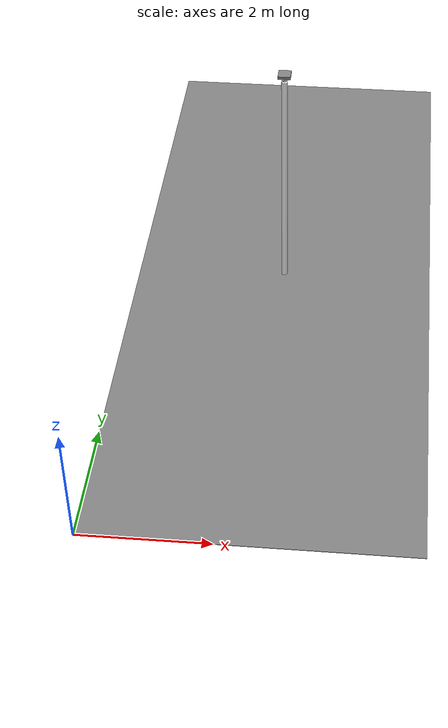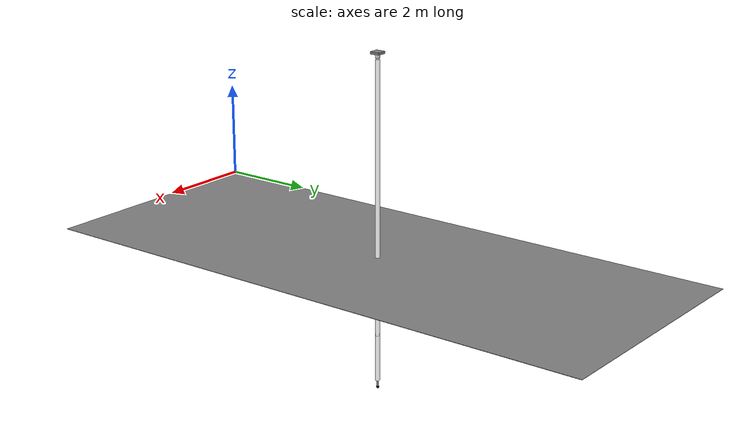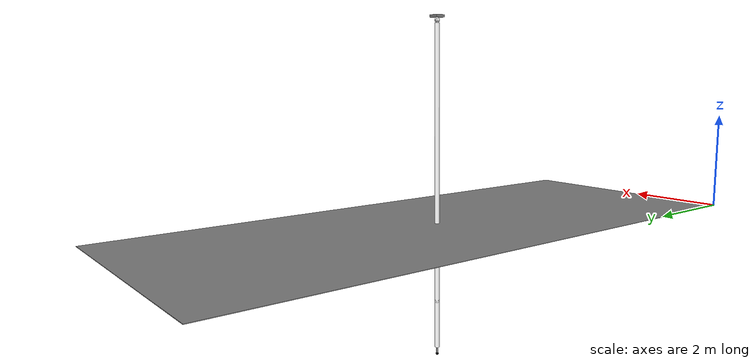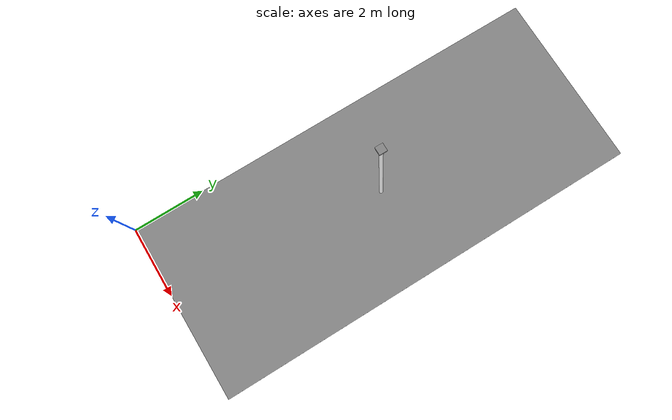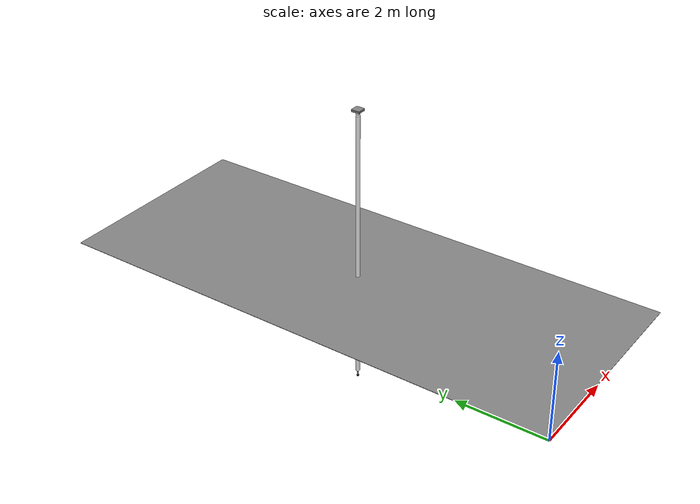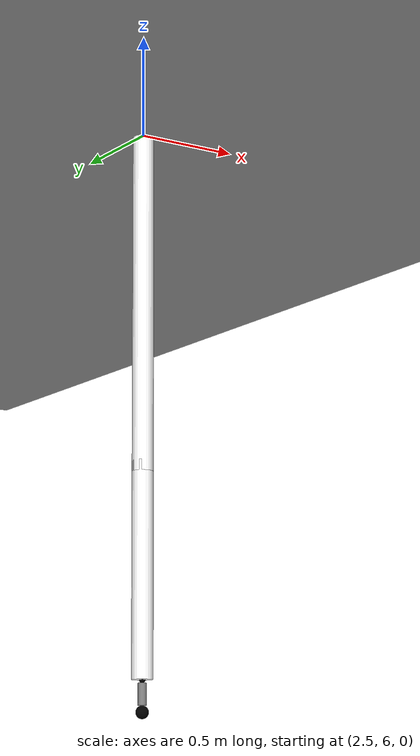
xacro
<?xml version="1.0" ?>

<robot name="giraffe_robot"  xmlns:xacro="http://www.ros.org/wiki/xacro">

    <!-- parameters -->
    <xacro:property name="ceiling_height" value="4.0"/>
    <xacro:property name="box_heigth" value="0.05"/>
    <xacro:property name="link_radius" value="0.05"/>
    <xacro:property name="prismatic_length" value="5.5"/>  <!-- prismatic range -->
    <xacro:property name="wrist_length" value="1"/>
    <xacro:property name="wrist2_radius" value="0.015"/>

    <!-- materials -->
    <material name="Blue">
        <color rgba="0 0 0.8 1"/>
    </material>

    <material name="Grey">
        <color rgba="0.5 0.5 0.5 1"/>
    </material>

    <material name="White">
        <color rgba="1 1 1 1"/>
    </material>

    <material name="Black">
        <color rgba="0 0 0 1"/>
    </material>

    <!-- params for inertia -->
    <!-- chosen material for the robot: aluminum. ABS plastic for microphone -->
    <xacro:property name="density_aluminum" value="2700.0"/>  <!-- density to compute mass (kg/m^3)-->
    <xacro:property name="density_plastic" value="1030.0"/>  <!-- density to compute mass (kg/m^3)-->
    <!-- masses of robot elements: density*volume -->
    <xacro:property name="base_joint_mass" value="${density_aluminum * (4/3)*pi*pow(link_radius, 3)}"/>    <!-- unique sphere volume for joint 1 and 2 -->
    <xacro:property name="prismatic_mass" value="${density_aluminum * pi*pow(link_radius, 2)*prismatic_length}"/>     <!-- sphere volume -->
    <xacro:property name="wrist1_joint_mass" value="${density_aluminum* pi*pow(link_radius, 2)*wrist_length}"/>  <!-- cylinder volume -->
    <xacro:property name="wrist1_mass" value="${density_aluminum* pi*pow(link_radius, 2)*wrist_length}"/>        <!-- cylinder volume -->
    <xacro:property name="wrist2_joint_mass" value="${density_aluminum* (4/3)*pi*pow(wrist2_radius, 3)}"/>  <!-- sphere volume -->
    <xacro:property name="mic_mass" value="${density_plastic* ((4/3)*pi*pow(0.03, 3) + pi*pow(0.02, 2)*0.1)}"/>    <!-- cylinder+sphere volume -->

    <link name="world"/>

   <!--floor 5x12 -->
    <link name="floor">
    <visual>
        <geometry>
        <box size="5 12 0.01"/> <!-- thin plane -->
        </geometry>
        <origin xyz="2.5 6 -0.005" rpy="0 0 0"/>    <!-- in -z to perfectly center it -->
        <material name="Grey"/>
    </visual>
    </link >

    <joint name="world_floor" type="fixed">
        <parent link="world"/>
        <child link="floor"/>
        <origin xyz="0 0 0" rpy="0 0 0"/>
    </joint>

    <!-- base link (on the ceiling) -->
    <link name="base_link">
        <visual>
            <geometry>
                <box size="0.2 0.2 ${box_heigth}"/>
            </geometry>
            <material name="Grey"/>
        </visual>
    </link>

    <!-- world reference set at the center of the ceiling-->
    <joint name="world_base" type="fixed">
        <parent link="world"/>
        <child link="base_link"/>
        <origin xyz="2.5 6.0 ${ceiling_height}" rpy="0 0 0"/>
    </joint>

    <!-- yaw link (z axis) and joint -->
    <link name="yaw_link">
        <visual>
            <geometry>
                <sphere radius="${link_radius}"/>
            </geometry>
            <material name="White"/>
        </visual>

        <inertial>
            <mass value="${base_joint_mass/2}"/>
            <origin xyz="0.0 0.0 0.0" rpy="0 0 0"/> <!-- position in the center -->
            <inertia ixx="${(2.0/5.0) * (base_joint_mass/2) * pow(link_radius, 2)}"
            ixy="0.0"
            ixz="0.0"
            iyy="${(2.0/5.0) * (base_joint_mass/2) * pow(link_radius, 2)}"
            iyz="0.0"
            izz="${(2.0/5.0) * (base_joint_mass/2) * pow(link_radius, 2)}"/>   <!-- inertia formula for full spheres -->
        </inertial>
    </link>

    <joint name="yaw_joint" type="revolute">
        <parent link="base_link"/>
        <child link="yaw_link"/>
        <origin xyz="0.0 0.0 -${link_radius+box_heigth/2}" rpy="0 0 0"/>
        <axis xyz="0 0 1"/>
        <limit lower="-${pi}" upper="${pi}" effort="10" velocity="1"/>
    </joint>

    <!-- pitch link (y axis) and joint -->
    <link name="pitch_link">
        <visual>
            <geometry>
                <sphere radius="${link_radius}"/>
            </geometry>
            <origin xyz="0 0 0" rpy="0 ${pi/2} 0"/>
            <material name="White"/>
        </visual>

        <inertial>
            <mass value="${base_joint_mass/2}"/>
            <origin xyz="0.0 0.0 0.0" rpy="0 ${pi/2} 0"/> <!-- position in the center -->
            <inertia ixx="${(2.0/5.0) * (base_joint_mass/2) * pow(link_radius, 2)}"
            ixy="0.0"
            ixz="0.0"
            iyy="${(2.0/5.0) * (base_joint_mass/2) * pow(link_radius, 2)}"
            iyz="0.0"
            izz="${(2.0/5.0) * (base_joint_mass/2) * pow(link_radius, 2)}"/>   <!-- inertia formula for spheres -->
        </inertial>
    </link>

    <joint name="pitch_joint" type="revolute">
        <parent link="yaw_link"/>
        <child link="pitch_link"/>
        <origin xyz="0 0 0" rpy="0 0 0"/>
        <axis xyz="0 1 0"/>
        <limit lower="-${pi/2}" upper="${pi/2}" effort="10" velocity="1"/>
    </joint>

    <!-- prismatic link and joint -->
    <link name="prismatic_link">
        <visual>
            <geometry>
                <cylinder length="${prismatic_length}" radius="${link_radius}"/>
            </geometry>
            <origin xyz="0 0 -${link_radius}" rpy="0 0 0"/>
            <material name="White"/>
        </visual>

        <inertial>
            <mass value="${prismatic_mass}"/>
            <origin xyz="0.0 0.0 -${prismatic_length/2}" rpy="0 0 0"/> <!-- position in the center -->
            <inertia ixx="${(1.0/12.0) * prismatic_mass * (3*pow(link_radius,2) + pow(prismatic_length, 2))}"
            ixy="0.0"
            ixz="0.0"
            iyy="${(1.0/12.0) * prismatic_mass * (3*pow(link_radius,2) + pow(prismatic_length, 2))}"
            iyz="0.0"
            izz="${(1.0/2.0) * prismatic_mass * pow(link_radius, 2)}"/>   <!-- inertia formula for cylinders (cylinder axis along z) -->
        </inertial>                                                       <!-- izz=1/2mr^2 , ixx=iyy=1/12m(3r^2+L^2)-->
    </link>

    <joint name="prismatic_joint" type="prismatic">
        <parent link="pitch_link"/>
        <child link="prismatic_link"/>
        <origin xyz="0 0 -${prismatic_length/2}" rpy="0 0 0"/> <!--xyz="0 0 -${prismatic_length/2}-->
        <axis xyz="0 0 1"/>
        <limit lower="0.0" upper="${prismatic_length}" effort="100" velocity="0.5"/>
    </joint>

    <!-- wrist1 link and joint -->
    <link name="wrist1_link">
        <visual>
            <geometry>
                <cylinder length="${wrist_length}" radius="${link_radius}"/>
            </geometry>
            <origin xyz="0 0 -${wrist_length/2}" rpy="0 0 0"/>
            <material name="White"/>
        </visual>

        <inertial>
            <mass value="${wrist1_mass}"/>
            <origin xyz="0.0 0.0 -${wrist_length/2}" rpy="0 0 0"/> <!-- position in the center -->
            <inertia ixx="${(1.0/12.0) * wrist1_mass * (3*pow(link_radius,2) + pow(wrist_length, 2))}"
            ixy="0.0"
            ixz="0.0"
            iyy="${(1.0/12.0) * wrist1_mass * (3*pow(link_radius,2) + pow(wrist_length, 2))}"
            iyz="0.0"
            izz="${(1.0/2.0) * wrist1_mass * pow(link_radius, 2)}"/>   <!-- inertia formula for cylinders (cylinder axis along z) -->
        </inertial>
    </link>

    <joint name="wrist1" type="revolute">
        <parent link="prismatic_link"/>
        <child link="wrist1_link"/>
        <origin xyz="0 0 -${prismatic_length/2}" rpy="0 0 0"/>
        <axis xyz="0 1 0"/>
        <limit lower="-${pi/2}" upper="${pi/2}" effort="5" velocity="1"/>
    </joint>

    <!-- wrist2 link and joint -->
    <link name="wrist2_link">
        <visual>
            <geometry>
                <sphere radius="${wrist2_radius}"/>
            </geometry>
            <material name="Black"/>
        </visual>

        <inertial>
            <mass value="${wrist2_joint_mass}"/>
            <origin xyz="0.0 0.0 -${wrist2_radius/2}" rpy="0 0 0"/> <!-- position in the center -->
            <inertia ixx="${(2.0/5.0) * wrist2_joint_mass * pow(wrist2_radius, 2)}"
            ixy="0.0"
            ixz="0.0"
            iyy="${(2.0/5.0) * wrist2_joint_mass * pow(wrist2_radius, 2)}"
            iyz="0.0"
            izz="${(2.0/5.0) * wrist2_joint_mass * pow(wrist2_radius, 2)}"/>   <!-- inertia formula for spheres -->
        </inertial>
    </link>

    <joint name="wrist2" type="revolute">
        <parent link="wrist1_link"/>
        <child link="wrist2_link"/>
        <origin xyz="0 0 -${wrist_length}" rpy="0 0 0"/>
        <axis xyz="0 1 0"/>
        <limit lower="-${pi/2}" upper="${pi/2}" effort="5" velocity="1"/>
    </joint>

    <!-- microphone (end effector) -->
     <link name="microphone">
        <visual>
            <geometry>
                <cylinder length="0.1" radius="0.02"/>
            </geometry>
            <origin xyz="0 0 0.11" rpy="0 0 0"/>
            <material name="Grey"/>
        </visual>
        <visual>
            <geometry>
                <sphere radius="0.03"/>
            </geometry>
            <origin xyz="0 0 0.03" rpy="0 0 0"/>
            <material name="Black"/>
        </visual>

        <inertial>      <!-- to simplify we approximate the inertia computation to a cylinder with the mic sphere's radius -->
            <mass value="${mic_mass}"/>
            <origin xyz="0 0 -0.08" rpy="0 0 0"/> <!-- center in the center of the approx cylinder (sphere radius+cylinder length)/2 -->
            <inertia
                ixx="${(1.0/12.0) * mic_mass * (3*pow(0.03,2) + pow(0.08,2))}"
                ixy="0.0"
                ixz="0.0"
                iyy="${(1.0/12.0) * mic_mass * (3*pow(0.03,2) + pow(0.08,2))}"
                iyz="0.0"
                izz="${(1.0/2.0) * mic_mass * pow(0.03,2)}"/>
        </inertial>
    </link>

    <joint name="mic_frame" type="fixed">
        <parent link="wrist2_link"/>
        <child link="microphone"/>
        <origin xyz="0 0 -0.175" rpy="0 0 0"/>
    </joint>

</robot>
